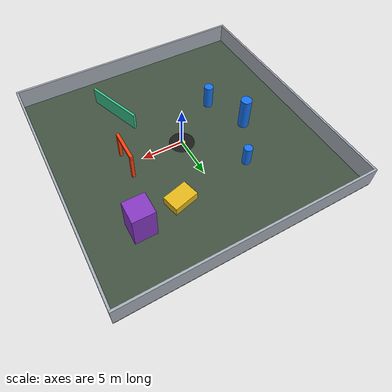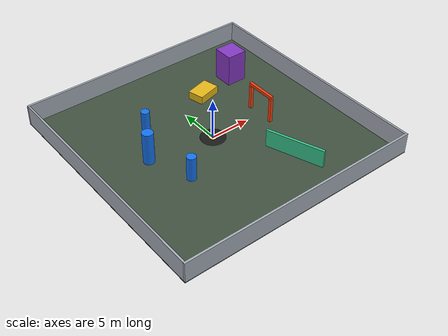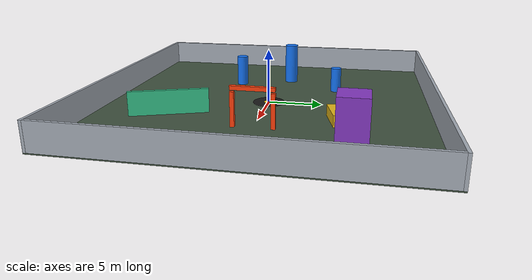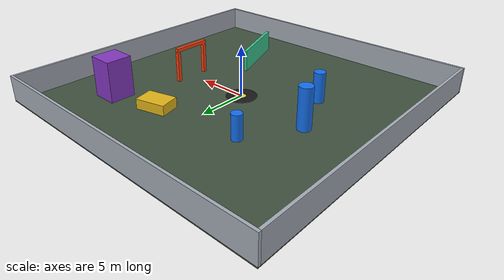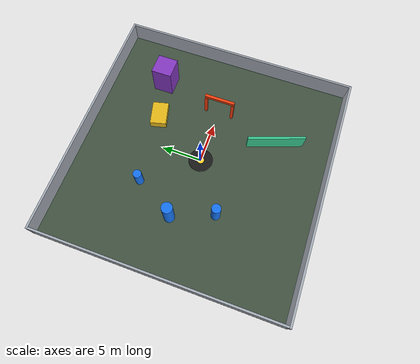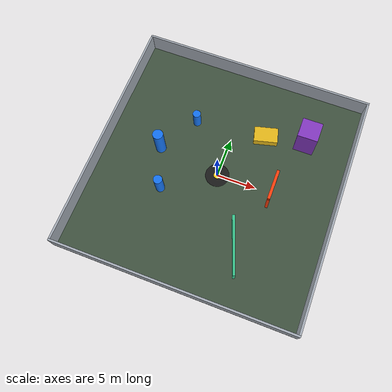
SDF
<?xml version="1.0"?>
<sdf version="1.6">
  <world name="uav_training">
    <gravity>0 0 -9.81</gravity>
    <magnetic_field>6e-06 2.3e-05 -4.2e-05</magnetic_field>

    <physics name="default_physics" type="ode">
      <max_step_size>0.001</max_step_size>
      <real_time_factor>1.0</real_time_factor>
      <real_time_update_rate>1000</real_time_update_rate>
    </physics>

    <scene>
      <ambient>0.45 0.45 0.45 1</ambient>
      <background>0.72 0.82 0.92 1</background>
      <shadows>true</shadows>
    </scene>

    <light name="sun" type="directional">
      <pose>0 0 20 0 0 0</pose>
      <cast_shadows>true</cast_shadows>
      <diffuse>0.9 0.9 0.85 1</diffuse>
      <specular>0.2 0.2 0.2 1</specular>
      <direction>-0.4 0.2 -0.9</direction>
    </light>

    <!-- 30 m x 30 m ground. The vehicle spawns at the clear center pad. -->
    <model name="ground">
      <static>true</static>
      <link name="link">
        <collision name="collision">
          <geometry>
            <box><size>30 30 0.1</size></box>
          </geometry>
        </collision>
        <visual name="visual">
          <geometry>
            <box><size>30 30 0.1</size></box>
          </geometry>
          <material>
            <ambient>0.18 0.22 0.18 1</ambient>
            <diffuse>0.25 0.32 0.25 1</diffuse>
          </material>
        </visual>
      </link>
      <pose>0 0 -0.05 0 0 0</pose>
    </model>

    <!-- High-contrast takeoff pad at the default PX4 spawn point. -->
    <model name="takeoff_pad">
      <static>true</static>
      <link name="link">
        <visual name="visual">
          <geometry>
            <cylinder><radius>1.5</radius><length>0.012</length></cylinder>
          </geometry>
          <material>
            <ambient>0.08 0.08 0.08 1</ambient>
            <diffuse>0.1 0.1 0.1 1</diffuse>
          </material>
        </visual>
        <visual name="center">
          <pose>0 0 0.008 0 0 0</pose>
          <geometry>
            <cylinder><radius>0.45</radius><length>0.015</length></cylinder>
          </geometry>
          <material>
            <ambient>0.9 0.75 0.05 1</ambient>
            <diffuse>1 0.82 0.08 1</diffuse>
          </material>
        </visual>
      </link>
      <pose>0 0 0.006 0 0 0</pose>
    </model>

    <!-- Arena boundary walls. -->
    <model name="wall_north">
      <static>true</static>
      <link name="link">
        <collision name="collision"><geometry><box><size>30 0.25 2.5</size></box></geometry></collision>
        <visual name="visual">
          <geometry><box><size>30 0.25 2.5</size></box></geometry>
          <material><ambient>0.55 0.57 0.60 1</ambient><diffuse>0.65 0.68 0.72 1</diffuse></material>
        </visual>
      </link>
      <pose>0 14.875 1.25 0 0 0</pose>
    </model>
    <model name="wall_south">
      <static>true</static>
      <link name="link">
        <collision name="collision"><geometry><box><size>30 0.25 2.5</size></box></geometry></collision>
        <visual name="visual">
          <geometry><box><size>30 0.25 2.5</size></box></geometry>
          <material><ambient>0.55 0.57 0.60 1</ambient><diffuse>0.65 0.68 0.72 1</diffuse></material>
        </visual>
      </link>
      <pose>0 -14.875 1.25 0 0 0</pose>
    </model>
    <model name="wall_east">
      <static>true</static>
      <link name="link">
        <collision name="collision"><geometry><box><size>0.25 29.5 2.5</size></box></geometry></collision>
        <visual name="visual">
          <geometry><box><size>0.25 29.5 2.5</size></box></geometry>
          <material><ambient>0.55 0.57 0.60 1</ambient><diffuse>0.65 0.68 0.72 1</diffuse></material>
        </visual>
      </link>
      <pose>14.875 0 1.25 0 0 0</pose>
    </model>
    <model name="wall_west">
      <static>true</static>
      <link name="link">
        <collision name="collision"><geometry><box><size>0.25 29.5 2.5</size></box></geometry></collision>
        <visual name="visual">
          <geometry><box><size>0.25 29.5 2.5</size></box></geometry>
          <material><ambient>0.55 0.57 0.60 1</ambient><diffuse>0.65 0.68 0.72 1</diffuse></material>
        </visual>
      </link>
      <pose>-14.875 0 1.25 0 0 0</pose>
    </model>

    <!-- A 2.8 m wide, 2.5 m high flight gate east of the start pad. -->
    <model name="flight_gate">
      <static>true</static>
      <link name="left_post">
        <pose>0 1.7 1.5 0 0 0</pose>
        <collision name="collision"><geometry><box><size>0.35 0.35 3</size></box></geometry></collision>
        <visual name="visual">
          <geometry><box><size>0.35 0.35 3</size></box></geometry>
          <material><ambient>0.85 0.18 0.04 1</ambient><diffuse>1 0.25 0.05 1</diffuse></material>
        </visual>
      </link>
      <link name="right_post">
        <pose>0 -1.7 1.5 0 0 0</pose>
        <collision name="collision"><geometry><box><size>0.35 0.35 3</size></box></geometry></collision>
        <visual name="visual">
          <geometry><box><size>0.35 0.35 3</size></box></geometry>
          <material><ambient>0.85 0.18 0.04 1</ambient><diffuse>1 0.25 0.05 1</diffuse></material>
        </visual>
      </link>
      <link name="top">
        <pose>0 0 3.325 0 0 0</pose>
        <collision name="collision"><geometry><box><size>0.35 3.75 0.35</size></box></geometry></collision>
        <visual name="visual">
          <geometry><box><size>0.35 3.75 0.35</size></box></geometry>
          <material><ambient>0.85 0.18 0.04 1</ambient><diffuse>1 0.25 0.05 1</diffuse></material>
        </visual>
      </link>
      <pose>7 0 0 0 0 0</pose>
    </model>

    <!-- Slalom pillars for lidar and local-planning tests. -->
    <model name="pillar_1">
      <static>true</static>
      <link name="link">
        <collision name="collision"><geometry><cylinder><radius>0.55</radius><length>3</length></cylinder></geometry></collision>
        <visual name="visual">
          <geometry><cylinder><radius>0.55</radius><length>3</length></cylinder></geometry>
          <material><ambient>0.05 0.35 0.75 1</ambient><diffuse>0.08 0.45 0.95 1</diffuse></material>
        </visual>
      </link>
      <pose>-6 -4 1.5 0 0 0</pose>
    </model>
    <model name="pillar_2">
      <static>true</static>
      <link name="link">
        <collision name="collision"><geometry><cylinder><radius>0.65</radius><length>4</length></cylinder></geometry></collision>
        <visual name="visual">
          <geometry><cylinder><radius>0.65</radius><length>4</length></cylinder></geometry>
          <material><ambient>0.05 0.35 0.75 1</ambient><diffuse>0.08 0.45 0.95 1</diffuse></material>
        </visual>
      </link>
      <pose>-8 1 2 0 0 0</pose>
    </model>
    <model name="pillar_3">
      <static>true</static>
      <link name="link">
        <collision name="collision"><geometry><cylinder><radius>0.5</radius><length>2.4</length></cylinder></geometry></collision>
        <visual name="visual">
          <geometry><cylinder><radius>0.5</radius><length>2.4</length></cylinder></geometry>
          <material><ambient>0.05 0.35 0.75 1</ambient><diffuse>0.08 0.45 0.95 1</diffuse></material>
        </visual>
      </link>
      <pose>-5 6 1.2 0 0 0</pose>
    </model>

    <!-- Box obstacles of different heights. -->
    <model name="box_low">
      <static>true</static>
      <link name="link">
        <collision name="collision"><geometry><box><size>3 2 1</size></box></geometry></collision>
        <visual name="visual">
          <geometry><box><size>3 2 1</size></box></geometry>
          <material><ambient>0.72 0.58 0.08 1</ambient><diffuse>0.9 0.72 0.1 1</diffuse></material>
        </visual>
      </link>
      <pose>4 7 0.5 0 0 0.25</pose>
    </model>
    <model name="box_tall">
      <static>true</static>
      <link name="link">
        <collision name="collision"><geometry><box><size>2.5 2.5 4</size></box></geometry></collision>
        <visual name="visual">
          <geometry><box><size>2.5 2.5 4</size></box></geometry>
          <material><ambient>0.38 0.16 0.58 1</ambient><diffuse>0.52 0.22 0.76 1</diffuse></material>
        </visual>
      </link>
      <pose>9 8 2 0 0 0</pose>
    </model>

    <!-- Offset wall creates a simple path-planning corner. -->
    <model name="inner_wall">
      <static>true</static>
      <link name="link">
        <collision name="collision"><geometry><box><size>0.3 7 2.2</size></box></geometry></collision>
        <visual name="visual">
          <geometry><box><size>0.3 7 2.2</size></box></geometry>
          <material><ambient>0.18 0.62 0.45 1</ambient><diffuse>0.22 0.78 0.56 1</diffuse></material>
        </visual>
      </link>
      <pose>5 -8 1.1 0 0 0.35</pose>
    </model>

    <gui fullscreen="false">
      <camera name="overview">
        <pose>24 -24 19 0 0.45 2.35</pose>
        <view_controller>orbit</view_controller>
      </camera>
    </gui>
  </world>
</sdf>
